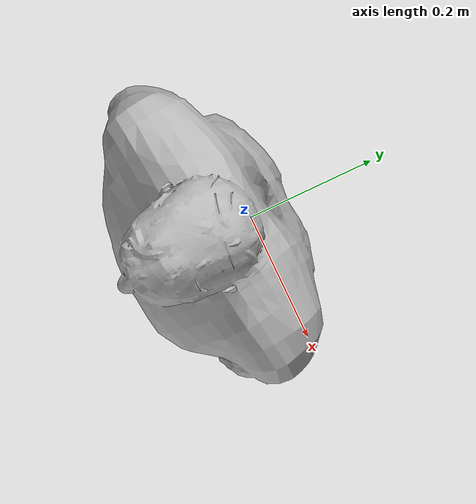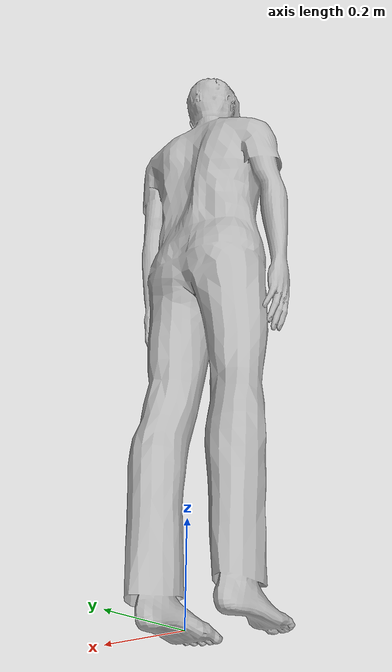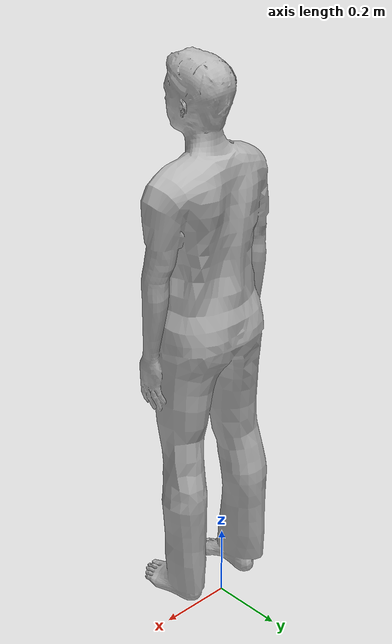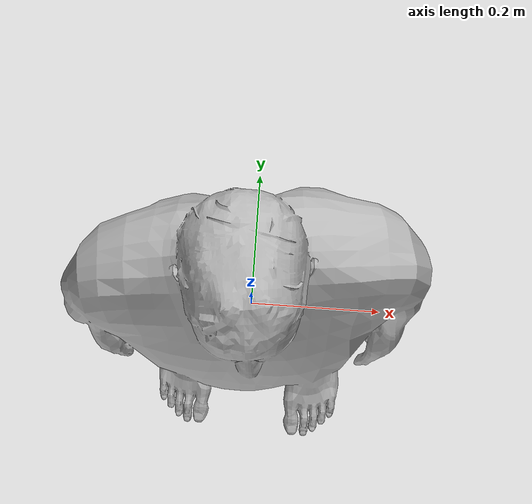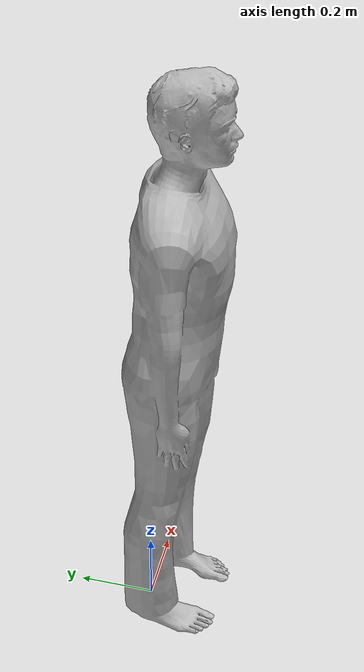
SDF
<?xml version="1.0" ?>
<sdf version="1.5">
  <model name="person_standing">
    <link name="link">
      <inertial>
        <pose>0 -0.1 0.95 0 0 0</pose>
        <mass>80.0</mass>
        <inertia>
          <ixx>24.88</ixx>
          <ixy>0</ixy>
          <ixz>0</ixz>
          <iyy>25.73</iyy>
          <iyz>0</iyz>
          <izz>2.48</izz>
        </inertia>
      </inertial>

      <collision name="person">
        <pose>0 0 0.02 0.04 0 0</pose>
        <geometry>
          <mesh>
            <scale>0.8 0.8 0.8</scale>
            <uri>model://person_standing/meshes/standing.dae</uri>
          </mesh>
        </geometry>
      </collision>

      <visual name="visual">
        <pose>0 0 0.02 0.04 0 0</pose>
        <geometry>
          <mesh>
            <scale>0.8 0.8 0.8</scale>
            <uri>model://person_standing/meshes/standing.dae</uri>
          </mesh>
        </geometry>
      </visual>
    </link>
  </model>
</sdf>
